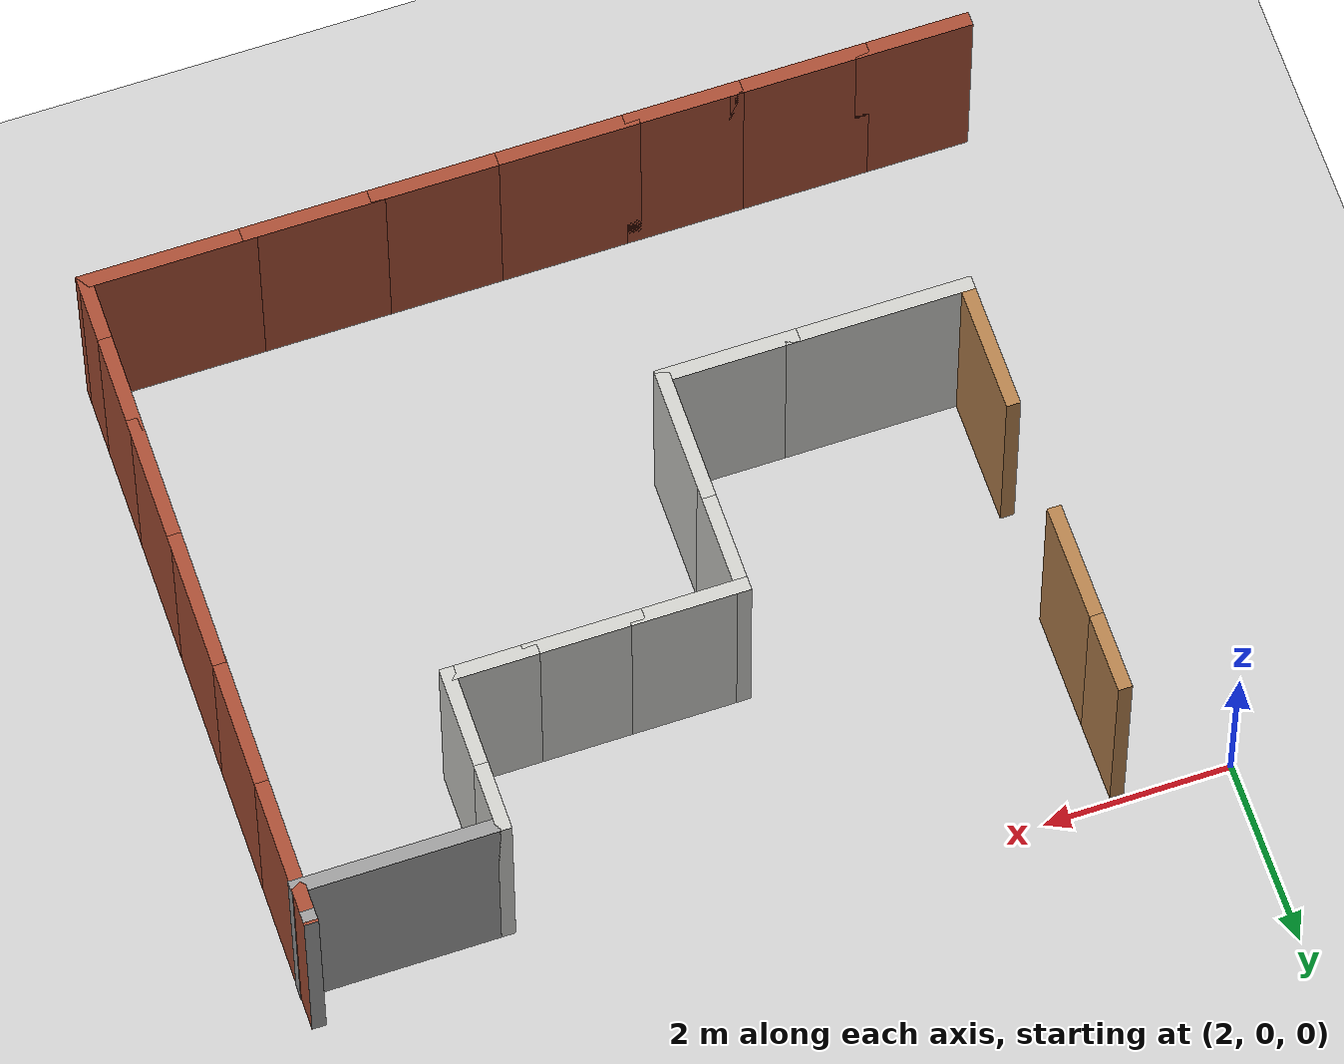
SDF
<sdf version="1.7">
 <world name="default">
  <model name="ground_plane">
   <static>1</static>
   <link name="link">
    <collision name="collision">
     <geometry><plane><normal>0 0 1</normal><size>100 100</size></plane></geometry>
     <surface>
      <contact><collide_bitmask>65535</collide_bitmask></contact>
      <friction><ode><mu>100</mu><mu2>50</mu2></ode></friction>
     </surface>
    </collision>
    <visual name="visual">
     <cast_shadows>0</cast_shadows>
     <geometry><plane><normal>0 0 1</normal><size>100 100</size></plane></geometry>
     <material>
      <script><uri>file://media/materials/scripts/gazebo.material</uri><name>Gazebo/Grey</name></script>
     </material>
    </visual>
   </link>
  </model>
  <model name="Building">
   <link name="Wall_126">
    <pose>2.88596 -1.03693 0 0 0 -1.5708</pose>
    <visual name="Wall_126_Visual">
     <pose>0 0 1.25 0 -0 0</pose>
     <geometry><box><size>1 0.15 2.5</size></box></geometry>
     <material>
      <script><uri>file://media/materials/scripts/gazebo.material</uri><name>Gazebo/Wood</name></script>
      <ambient>1 1 1 1</ambient>
      <shader type="pixel"/>
     </material>
     <meta><layer>0</layer></meta>
    </visual>
    <collision name="Wall_126_Collision">
     <pose>0 0 1.25 0 -0 0</pose>
     <geometry><box><size>1 0.15 2.5</size></box></geometry>
     <surface>
      <friction>
       <ode><mu>1</mu><mu2>1</mu2><fdir1>0 0 0</fdir1><slip1>0</slip1><slip2>0</slip2></ode>
       <torsional>
        <coefficient>1</coefficient>
        <patch_radius>0</patch_radius>
        <surface_radius>0</surface_radius>
        <use_patch_radius>1</use_patch_radius>
        <ode><slip>0</slip></ode>
       </torsional>
      </friction>
      <bounce><restitution_coefficient>0</restitution_coefficient><threshold>1e+06</threshold></bounce>
      <contact>
       <collide_without_contact>0</collide_without_contact>
       <collide_without_contact_bitmask>1</collide_without_contact_bitmask>
       <collide_bitmask>1</collide_bitmask>
       <ode>
        <soft_cfm>0</soft_cfm>
        <soft_erp>0.2</soft_erp>
        <kp>1e+13</kp>
        <kd>1</kd>
        <max_vel>0.01</max_vel>
        <min_depth>0</min_depth>
       </ode>
       <bullet>
        <split_impulse>1</split_impulse>
        <split_impulse_penetration_threshold>-0.01</split_impulse_penetration_threshold>
        <soft_cfm>0</soft_cfm>
        <soft_erp>0.2</soft_erp>
        <kp>1e+13</kp>
        <kd>1</kd>
       </bullet>
      </contact>
     </surface>
    </collision>
   </link>
   <link name="Wall_127">
    <pose>2.88596 -2.01193 0 0 0 -1.5708</pose>
    <visual name="Wall_127_Visual">
     <pose>0 0 1.25 0 -0 0</pose>
     <geometry><box><size>1.25 0.15 2.5</size></box></geometry>
     <material>
      <script><uri>file://media/materials/scripts/gazebo.material</uri><name>Gazebo/Wood</name></script>
      <ambient>1 1 1 1</ambient>
      <shader type="pixel"/>
     </material>
     <meta><layer>0</layer></meta>
    </visual>
    <collision name="Wall_127_Collision">
     <pose>0 0 1.25 0 -0 0</pose>
     <geometry><box><size>1.25 0.15 2.5</size></box></geometry>
     <surface>
      <friction>
       <ode><mu>1</mu><mu2>1</mu2><fdir1>0 0 0</fdir1><slip1>0</slip1><slip2>0</slip2></ode>
       <torsional>
        <coefficient>1</coefficient>
        <patch_radius>0</patch_radius>
        <surface_radius>0</surface_radius>
        <use_patch_radius>1</use_patch_radius>
        <ode><slip>0</slip></ode>
       </torsional>
      </friction>
      <bounce><restitution_coefficient>0</restitution_coefficient><threshold>1e+06</threshold></bounce>
      <contact>
       <collide_without_contact>0</collide_without_contact>
       <collide_without_contact_bitmask>1</collide_without_contact_bitmask>
       <collide_bitmask>1</collide_bitmask>
       <ode>
        <soft_cfm>0</soft_cfm>
        <soft_erp>0.2</soft_erp>
        <kp>1e+13</kp>
        <kd>1</kd>
        <max_vel>0.01</max_vel>
        <min_depth>0</min_depth>
       </ode>
       <bullet>
        <split_impulse>1</split_impulse>
        <split_impulse_penetration_threshold>-0.01</split_impulse_penetration_threshold>
        <soft_cfm>0</soft_cfm>
        <soft_erp>0.2</soft_erp>
        <kp>1e+13</kp>
        <kd>1</kd>
       </bullet>
      </contact>
     </surface>
    </collision>
   </link>
   <link name="Wall_129">
    <pose>2.88596 -4.58694 0 0 0 -1.5708</pose>
    <visual name="Wall_129_Visual">
     <pose>0 0 1.25 0 -0 0</pose>
     <geometry><box><size>1.5 0.15 2.5</size></box></geometry>
     <material>
      <script><uri>file://media/materials/scripts/gazebo.material</uri><name>Gazebo/Wood</name></script>
      <ambient>1 1 1 1</ambient>
      <shader type="pixel"/>
     </material>
     <meta><layer>0</layer></meta>
    </visual>
    <collision name="Wall_129_Collision">
     <pose>0 0 1.25 0 -0 0</pose>
     <geometry><box><size>1.5 0.15 2.5</size></box></geometry>
     <surface>
      <friction>
       <ode><mu>1</mu><mu2>1</mu2><fdir1>0 0 0</fdir1><slip1>0</slip1><slip2>0</slip2></ode>
       <torsional>
        <coefficient>1</coefficient>
        <patch_radius>0</patch_radius>
        <surface_radius>0</surface_radius>
        <use_patch_radius>1</use_patch_radius>
        <ode><slip>0</slip></ode>
       </torsional>
      </friction>
      <bounce><restitution_coefficient>0</restitution_coefficient><threshold>1e+06</threshold></bounce>
      <contact>
       <collide_without_contact>0</collide_without_contact>
       <collide_without_contact_bitmask>1</collide_without_contact_bitmask>
       <collide_bitmask>1</collide_bitmask>
       <ode>
        <soft_cfm>0</soft_cfm>
        <soft_erp>0.2</soft_erp>
        <kp>1e+13</kp>
        <kd>1</kd>
        <max_vel>0.01</max_vel>
        <min_depth>0</min_depth>
       </ode>
       <bullet>
        <split_impulse>1</split_impulse>
        <split_impulse_penetration_threshold>-0.01</split_impulse_penetration_threshold>
        <soft_cfm>0</soft_cfm>
        <soft_erp>0.2</soft_erp>
        <kp>1e+13</kp>
        <kd>1</kd>
       </bullet>
      </contact>
     </surface>
    </collision>
   </link>
   <link name="Wall_130">
    <pose>3.81096 -5.26194 0 0 -0 0</pose>
    <visual name="Wall_130_Visual">
     <pose>0 0 1.25 0 -0 0</pose>
     <geometry><box><size>2 0.15 2.5</size></box></geometry>
     <material>
      <script><uri>file://media/materials/scripts/gazebo.material</uri><name>Gazebo/CeilingTiled</name></script>
      <ambient>1 1 1 1</ambient>
      <shader type="pixel"/>
     </material>
     <meta><layer>0</layer></meta>
    </visual>
    <collision name="Wall_130_Collision">
     <pose>0 0 1.25 0 -0 0</pose>
     <geometry><box><size>2 0.15 2.5</size></box></geometry>
     <surface>
      <friction>
       <ode><mu>1</mu><mu2>1</mu2><fdir1>0 0 0</fdir1><slip1>0</slip1><slip2>0</slip2></ode>
       <torsional>
        <coefficient>1</coefficient>
        <patch_radius>0</patch_radius>
        <surface_radius>0</surface_radius>
        <use_patch_radius>1</use_patch_radius>
        <ode><slip>0</slip></ode>
       </torsional>
      </friction>
      <bounce><restitution_coefficient>0</restitution_coefficient><threshold>1e+06</threshold></bounce>
      <contact>
       <collide_without_contact>0</collide_without_contact>
       <collide_without_contact_bitmask>1</collide_without_contact_bitmask>
       <collide_bitmask>1</collide_bitmask>
       <ode>
        <soft_cfm>0</soft_cfm>
        <soft_erp>0.2</soft_erp>
        <kp>1e+13</kp>
        <kd>1</kd>
        <max_vel>0.01</max_vel>
        <min_depth>0</min_depth>
       </ode>
       <bullet>
        <split_impulse>1</split_impulse>
        <split_impulse_penetration_threshold>-0.01</split_impulse_penetration_threshold>
        <soft_cfm>0</soft_cfm>
        <soft_erp>0.2</soft_erp>
        <kp>1e+13</kp>
        <kd>1</kd>
       </bullet>
      </contact>
     </surface>
    </collision>
   </link>
   <link name="Wall_131">
    <pose>5.41096 -5.26194 0 0 -0 0</pose>
    <visual name="Wall_131_Visual">
     <pose>0 0 1.25 0 -0 0</pose>
     <geometry><box><size>1.5 0.15 2.5</size></box></geometry>
     <material>
      <script><uri>file://media/materials/scripts/gazebo.material</uri><name>Gazebo/CeilingTiled</name></script>
      <ambient>1 1 1 1</ambient>
      <shader type="pixel"/>
     </material>
     <meta><layer>0</layer></meta>
    </visual>
    <collision name="Wall_131_Collision">
     <pose>0 0 1.25 0 -0 0</pose>
     <geometry><box><size>1.5 0.15 2.5</size></box></geometry>
     <surface>
      <friction>
       <ode><mu>1</mu><mu2>1</mu2><fdir1>0 0 0</fdir1><slip1>0</slip1><slip2>0</slip2></ode>
       <torsional>
        <coefficient>1</coefficient>
        <patch_radius>0</patch_radius>
        <surface_radius>0</surface_radius>
        <use_patch_radius>1</use_patch_radius>
        <ode><slip>0</slip></ode>
       </torsional>
      </friction>
      <bounce><restitution_coefficient>0</restitution_coefficient><threshold>1e+06</threshold></bounce>
      <contact>
       <collide_without_contact>0</collide_without_contact>
       <collide_without_contact_bitmask>1</collide_without_contact_bitmask>
       <collide_bitmask>1</collide_bitmask>
       <ode>
        <soft_cfm>0</soft_cfm>
        <soft_erp>0.2</soft_erp>
        <kp>1e+13</kp>
        <kd>1</kd>
        <max_vel>0.01</max_vel>
        <min_depth>0</min_depth>
       </ode>
       <bullet>
        <split_impulse>1</split_impulse>
        <split_impulse_penetration_threshold>-0.01</split_impulse_penetration_threshold>
        <soft_cfm>0</soft_cfm>
        <soft_erp>0.2</soft_erp>
        <kp>1e+13</kp>
        <kd>1</kd>
       </bullet>
      </contact>
     </surface>
    </collision>
   </link>
   <link name="Wall_132">
    <pose>6.08596 -4.58694 0 0 -0 1.5708</pose>
    <visual name="Wall_132_Visual">
     <pose>0 0 1.25 0 -0 0</pose>
     <geometry><box><size>1.5 0.15 2.5</size></box></geometry>
     <material>
      <script><uri>file://media/materials/scripts/gazebo.material</uri><name>Gazebo/CeilingTiled</name></script>
      <ambient>1 1 1 1</ambient>
      <shader type="pixel"/>
     </material>
     <meta><layer>0</layer></meta>
    </visual>
    <collision name="Wall_132_Collision">
     <pose>0 0 1.25 0 -0 0</pose>
     <geometry><box><size>1.5 0.15 2.5</size></box></geometry>
     <surface>
      <friction>
       <ode><mu>1</mu><mu2>1</mu2><fdir1>0 0 0</fdir1><slip1>0</slip1><slip2>0</slip2></ode>
       <torsional>
        <coefficient>1</coefficient>
        <patch_radius>0</patch_radius>
        <surface_radius>0</surface_radius>
        <use_patch_radius>1</use_patch_radius>
        <ode><slip>0</slip></ode>
       </torsional>
      </friction>
      <bounce><restitution_coefficient>0</restitution_coefficient><threshold>1e+06</threshold></bounce>
      <contact>
       <collide_without_contact>0</collide_without_contact>
       <collide_without_contact_bitmask>1</collide_without_contact_bitmask>
       <collide_bitmask>1</collide_bitmask>
       <ode>
        <soft_cfm>0</soft_cfm>
        <soft_erp>0.2</soft_erp>
        <kp>1e+13</kp>
        <kd>1</kd>
        <max_vel>0.01</max_vel>
        <min_depth>0</min_depth>
       </ode>
       <bullet>
        <split_impulse>1</split_impulse>
        <split_impulse_penetration_threshold>-0.01</split_impulse_penetration_threshold>
        <soft_cfm>0</soft_cfm>
        <soft_erp>0.2</soft_erp>
        <kp>1e+13</kp>
        <kd>1</kd>
       </bullet>
      </contact>
     </surface>
    </collision>
   </link>
   <link name="Wall_133">
    <pose>6.08596 -3.36193 0 0 -0 1.5708</pose>
    <visual name="Wall_133_Visual">
     <pose>0 0 1.25 0 -0 0</pose>
     <geometry><box><size>1.25 0.15 2.5</size></box></geometry>
     <material>
      <script><uri>file://media/materials/scripts/gazebo.material</uri><name>Gazebo/CeilingTiled</name></script>
      <ambient>1 1 1 1</ambient>
      <shader type="pixel"/>
     </material>
     <meta><layer>0</layer></meta>
    </visual>
    <collision name="Wall_133_Collision">
     <pose>0 0 1.25 0 -0 0</pose>
     <geometry><box><size>1.25 0.15 2.5</size></box></geometry>
     <surface>
      <friction>
       <ode><mu>1</mu><mu2>1</mu2><fdir1>0 0 0</fdir1><slip1>0</slip1><slip2>0</slip2></ode>
       <torsional>
        <coefficient>1</coefficient>
        <patch_radius>0</patch_radius>
        <surface_radius>0</surface_radius>
        <use_patch_radius>1</use_patch_radius>
        <ode><slip>0</slip></ode>
       </torsional>
      </friction>
      <bounce><restitution_coefficient>0</restitution_coefficient><threshold>1e+06</threshold></bounce>
      <contact>
       <collide_without_contact>0</collide_without_contact>
       <collide_without_contact_bitmask>1</collide_without_contact_bitmask>
       <collide_bitmask>1</collide_bitmask>
       <ode>
        <soft_cfm>0</soft_cfm>
        <soft_erp>0.2</soft_erp>
        <kp>1e+13</kp>
        <kd>1</kd>
        <max_vel>0.01</max_vel>
        <min_depth>0</min_depth>
       </ode>
       <bullet>
        <split_impulse>1</split_impulse>
        <split_impulse_penetration_threshold>-0.01</split_impulse_penetration_threshold>
        <soft_cfm>0</soft_cfm>
        <soft_erp>0.2</soft_erp>
        <kp>1e+13</kp>
        <kd>1</kd>
       </bullet>
      </contact>
     </surface>
    </collision>
   </link>
   <link name="Wall_134">
    <pose>6.63596 -2.81194 0 0 -0 0</pose>
    <visual name="Wall_134_Visual">
     <pose>0 0 1.25 0 -0 0</pose>
     <geometry><box><size>1.25 0.15 2.5</size></box></geometry>
     <material>
      <script><uri>file://media/materials/scripts/gazebo.material</uri><name>Gazebo/CeilingTiled</name></script>
      <ambient>1 1 1 1</ambient>
      <shader type="pixel"/>
     </material>
     <meta><layer>0</layer></meta>
    </visual>
    <collision name="Wall_134_Collision">
     <pose>0 0 1.25 0 -0 0</pose>
     <geometry><box><size>1.25 0.15 2.5</size></box></geometry>
     <surface>
      <friction>
       <ode><mu>1</mu><mu2>1</mu2><fdir1>0 0 0</fdir1><slip1>0</slip1><slip2>0</slip2></ode>
       <torsional>
        <coefficient>1</coefficient>
        <patch_radius>0</patch_radius>
        <surface_radius>0</surface_radius>
        <use_patch_radius>1</use_patch_radius>
        <ode><slip>0</slip></ode>
       </torsional>
      </friction>
      <bounce><restitution_coefficient>0</restitution_coefficient><threshold>1e+06</threshold></bounce>
      <contact>
       <collide_without_contact>0</collide_without_contact>
       <collide_without_contact_bitmask>1</collide_without_contact_bitmask>
       <collide_bitmask>1</collide_bitmask>
       <ode>
        <soft_cfm>0</soft_cfm>
        <soft_erp>0.2</soft_erp>
        <kp>1e+13</kp>
        <kd>1</kd>
        <max_vel>0.01</max_vel>
        <min_depth>0</min_depth>
       </ode>
       <bullet>
        <split_impulse>1</split_impulse>
        <split_impulse_penetration_threshold>-0.01</split_impulse_penetration_threshold>
        <soft_cfm>0</soft_cfm>
        <soft_erp>0.2</soft_erp>
        <kp>1e+13</kp>
        <kd>1</kd>
       </bullet>
      </contact>
     </surface>
    </collision>
   </link>
   <link name="Wall_135">
    <pose>7.73596 -2.81194 0 0 -0 0</pose>
    <visual name="Wall_135_Visual">
     <pose>0 0 1.25 0 -0 0</pose>
     <geometry><box><size>1.25 0.15 2.5</size></box></geometry>
     <material>
      <script><uri>file://media/materials/scripts/gazebo.material</uri><name>Gazebo/CeilingTiled</name></script>
      <ambient>1 1 1 1</ambient>
      <shader type="pixel"/>
     </material>
     <meta><layer>0</layer></meta>
    </visual>
    <collision name="Wall_135_Collision">
     <pose>0 0 1.25 0 -0 0</pose>
     <geometry><box><size>1.25 0.15 2.5</size></box></geometry>
     <surface>
      <friction>
       <ode><mu>1</mu><mu2>1</mu2><fdir1>0 0 0</fdir1><slip1>0</slip1><slip2>0</slip2></ode>
       <torsional>
        <coefficient>1</coefficient>
        <patch_radius>0</patch_radius>
        <surface_radius>0</surface_radius>
        <use_patch_radius>1</use_patch_radius>
        <ode><slip>0</slip></ode>
       </torsional>
      </friction>
      <bounce><restitution_coefficient>0</restitution_coefficient><threshold>1e+06</threshold></bounce>
      <contact>
       <collide_without_contact>0</collide_without_contact>
       <collide_without_contact_bitmask>1</collide_without_contact_bitmask>
       <collide_bitmask>1</collide_bitmask>
       <ode>
        <soft_cfm>0</soft_cfm>
        <soft_erp>0.2</soft_erp>
        <kp>1e+13</kp>
        <kd>1</kd>
        <max_vel>0.01</max_vel>
        <min_depth>0</min_depth>
       </ode>
       <bullet>
        <split_impulse>1</split_impulse>
        <split_impulse_penetration_threshold>-0.01</split_impulse_penetration_threshold>
        <soft_cfm>0</soft_cfm>
        <soft_erp>0.2</soft_erp>
        <kp>1e+13</kp>
        <kd>1</kd>
       </bullet>
      </contact>
     </surface>
    </collision>
   </link>
   <link name="Wall_136">
    <pose>8.71096 -2.81194 0 0 -0 0</pose>
    <visual name="Wall_136_Visual">
     <pose>0 0 1.25 0 -0 0</pose>
     <geometry><box><size>1 0.15 2.5</size></box></geometry>
     <material>
      <script><uri>file://media/materials/scripts/gazebo.material</uri><name>Gazebo/CeilingTiled</name></script>
      <ambient>1 1 1 1</ambient>
      <shader type="pixel"/>
     </material>
     <meta><layer>0</layer></meta>
    </visual>
    <collision name="Wall_136_Collision">
     <pose>0 0 1.25 0 -0 0</pose>
     <geometry><box><size>1 0.15 2.5</size></box></geometry>
     <surface>
      <friction>
       <ode><mu>1</mu><mu2>1</mu2><fdir1>0 0 0</fdir1><slip1>0</slip1><slip2>0</slip2></ode>
       <torsional>
        <coefficient>1</coefficient>
        <patch_radius>0</patch_radius>
        <surface_radius>0</surface_radius>
        <use_patch_radius>1</use_patch_radius>
        <ode><slip>0</slip></ode>
       </torsional>
      </friction>
      <bounce><restitution_coefficient>0</restitution_coefficient><threshold>1e+06</threshold></bounce>
      <contact>
       <collide_without_contact>0</collide_without_contact>
       <collide_without_contact_bitmask>1</collide_without_contact_bitmask>
       <collide_bitmask>1</collide_bitmask>
       <ode>
        <soft_cfm>0</soft_cfm>
        <soft_erp>0.2</soft_erp>
        <kp>1e+13</kp>
        <kd>1</kd>
        <max_vel>0.01</max_vel>
        <min_depth>0</min_depth>
       </ode>
       <bullet>
        <split_impulse>1</split_impulse>
        <split_impulse_penetration_threshold>-0.01</split_impulse_penetration_threshold>
        <soft_cfm>0</soft_cfm>
        <soft_erp>0.2</soft_erp>
        <kp>1e+13</kp>
        <kd>1</kd>
       </bullet>
      </contact>
     </surface>
    </collision>
   </link>
   <link name="Wall_137">
    <pose>9.13596 -2.26193 0 0 -0 1.5708</pose>
    <visual name="Wall_137_Visual">
     <pose>0 0 1.25 0 -0 0</pose>
     <geometry><box><size>1.25 0.15 2.5</size></box></geometry>
     <material>
      <script><uri>file://media/materials/scripts/gazebo.material</uri><name>Gazebo/CeilingTiled</name></script>
      <ambient>1 1 1 1</ambient>
      <shader type="pixel"/>
     </material>
     <meta><layer>0</layer></meta>
    </visual>
    <collision name="Wall_137_Collision">
     <pose>0 0 1.25 0 -0 0</pose>
     <geometry><box><size>1.25 0.15 2.5</size></box></geometry>
     <surface>
      <friction>
       <ode><mu>1</mu><mu2>1</mu2><fdir1>0 0 0</fdir1><slip1>0</slip1><slip2>0</slip2></ode>
       <torsional>
        <coefficient>1</coefficient>
        <patch_radius>0</patch_radius>
        <surface_radius>0</surface_radius>
        <use_patch_radius>1</use_patch_radius>
        <ode><slip>0</slip></ode>
       </torsional>
      </friction>
      <bounce><restitution_coefficient>0</restitution_coefficient><threshold>1e+06</threshold></bounce>
      <contact>
       <collide_without_contact>0</collide_without_contact>
       <collide_without_contact_bitmask>1</collide_without_contact_bitmask>
       <collide_bitmask>1</collide_bitmask>
       <ode>
        <soft_cfm>0</soft_cfm>
        <soft_erp>0.2</soft_erp>
        <kp>1e+13</kp>
        <kd>1</kd>
        <max_vel>0.01</max_vel>
        <min_depth>0</min_depth>
       </ode>
       <bullet>
        <split_impulse>1</split_impulse>
        <split_impulse_penetration_threshold>-0.01</split_impulse_penetration_threshold>
        <soft_cfm>0</soft_cfm>
        <soft_erp>0.2</soft_erp>
        <kp>1e+13</kp>
        <kd>1</kd>
       </bullet>
      </contact>
     </surface>
    </collision>
   </link>
   <link name="Wall_138">
    <pose>9.13596 -1.41193 0 0 -0 1.5708</pose>
    <visual name="Wall_138_Visual">
     <pose>0 0 1.25 0 -0 0</pose>
     <geometry><box><size>0.75 0.15 2.5</size></box></geometry>
     <material>
      <script><uri>file://media/materials/scripts/gazebo.material</uri><name>Gazebo/CeilingTiled</name></script>
      <ambient>1 1 1 1</ambient>
      <shader type="pixel"/>
     </material>
     <meta><layer>0</layer></meta>
    </visual>
    <collision name="Wall_138_Collision">
     <pose>0 0 1.25 0 -0 0</pose>
     <geometry><box><size>0.75 0.15 2.5</size></box></geometry>
     <surface>
      <friction>
       <ode><mu>1</mu><mu2>1</mu2><fdir1>0 0 0</fdir1><slip1>0</slip1><slip2>0</slip2></ode>
       <torsional>
        <coefficient>1</coefficient>
        <patch_radius>0</patch_radius>
        <surface_radius>0</surface_radius>
        <use_patch_radius>1</use_patch_radius>
        <ode><slip>0</slip></ode>
       </torsional>
      </friction>
      <bounce><restitution_coefficient>0</restitution_coefficient><threshold>1e+06</threshold></bounce>
      <contact>
       <collide_without_contact>0</collide_without_contact>
       <collide_without_contact_bitmask>1</collide_without_contact_bitmask>
       <collide_bitmask>1</collide_bitmask>
       <ode>
        <soft_cfm>0</soft_cfm>
        <soft_erp>0.2</soft_erp>
        <kp>1e+13</kp>
        <kd>1</kd>
        <max_vel>0.01</max_vel>
        <min_depth>0</min_depth>
       </ode>
       <bullet>
        <split_impulse>1</split_impulse>
        <split_impulse_penetration_threshold>-0.01</split_impulse_penetration_threshold>
        <soft_cfm>0</soft_cfm>
        <soft_erp>0.2</soft_erp>
        <kp>1e+13</kp>
        <kd>1</kd>
       </bullet>
      </contact>
     </surface>
    </collision>
   </link>
   <link name="Wall_144">
    <pose>10.186 -1.11193 0 0 -0 0</pose>
    <visual name="Wall_144_Visual">
     <pose>0 0 1.25 0 -0 0</pose>
     <geometry><box><size>2.25 0.15 2.5</size></box></geometry>
     <material>
      <script><uri>file://media/materials/scripts/gazebo.material</uri><name>Gazebo/Grey</name></script>
      <ambient>1 1 1 1</ambient>
      <shader type="pixel"/>
     </material>
     <meta><layer>0</layer></meta>
    </visual>
    <collision name="Wall_144_Collision">
     <pose>0 0 1.25 0 -0 0</pose>
     <geometry><box><size>2.25 0.15 2.5</size></box></geometry>
     <surface>
      <friction>
       <ode><mu>1</mu><mu2>1</mu2><fdir1>0 0 0</fdir1><slip1>0</slip1><slip2>0</slip2></ode>
       <torsional>
        <coefficient>1</coefficient>
        <patch_radius>0</patch_radius>
        <surface_radius>0</surface_radius>
        <use_patch_radius>1</use_patch_radius>
        <ode><slip>0</slip></ode>
       </torsional>
      </friction>
      <bounce><restitution_coefficient>0</restitution_coefficient><threshold>1e+06</threshold></bounce>
      <contact>
       <collide_without_contact>0</collide_without_contact>
       <collide_without_contact_bitmask>1</collide_without_contact_bitmask>
       <collide_bitmask>1</collide_bitmask>
       <ode>
        <soft_cfm>0</soft_cfm>
        <soft_erp>0.2</soft_erp>
        <kp>1e+13</kp>
        <kd>1</kd>
        <max_vel>0.01</max_vel>
        <min_depth>0</min_depth>
       </ode>
       <bullet>
        <split_impulse>1</split_impulse>
        <split_impulse_penetration_threshold>-0.01</split_impulse_penetration_threshold>
        <soft_cfm>0</soft_cfm>
        <soft_erp>0.2</soft_erp>
        <kp>1e+13</kp>
        <kd>1</kd>
       </bullet>
      </contact>
     </surface>
    </collision>
   </link>
   <link name="Wall_33">
    <pose>2.46404 -8.11373 0 0 -0 0</pose>
    <visual name="Wall_33_Visual">
     <pose>0 0 1.25 0 -0 0</pose>
     <geometry><box><size>1.25 0.15 2.5</size></box></geometry>
     <material>
      <script><uri>file://media/materials/scripts/gazebo.material</uri><name>Gazebo/Bricks</name></script>
      <ambient>1 1 1 1</ambient>
      <shader type="pixel"/>
     </material>
     <meta><layer>0</layer></meta>
    </visual>
    <collision name="Wall_33_Collision">
     <pose>0 0 1.25 0 -0 0</pose>
     <geometry><box><size>1.25 0.15 2.5</size></box></geometry>
     <surface>
      <friction>
       <ode><mu>1</mu><mu2>1</mu2><fdir1>0 0 0</fdir1><slip1>0</slip1><slip2>0</slip2></ode>
       <torsional>
        <coefficient>1</coefficient>
        <patch_radius>0</patch_radius>
        <surface_radius>0</surface_radius>
        <use_patch_radius>1</use_patch_radius>
        <ode><slip>0</slip></ode>
       </torsional>
      </friction>
      <bounce><restitution_coefficient>0</restitution_coefficient><threshold>1e+06</threshold></bounce>
      <contact>
       <collide_without_contact>0</collide_without_contact>
       <collide_without_contact_bitmask>1</collide_without_contact_bitmask>
       <collide_bitmask>1</collide_bitmask>
       <ode>
        <soft_cfm>0</soft_cfm>
        <soft_erp>0.2</soft_erp>
        <kp>1e+13</kp>
        <kd>1</kd>
        <max_vel>0.01</max_vel>
        <min_depth>0</min_depth>
       </ode>
       <bullet>
        <split_impulse>1</split_impulse>
        <split_impulse_penetration_threshold>-0.01</split_impulse_penetration_threshold>
        <soft_cfm>0</soft_cfm>
        <soft_erp>0.2</soft_erp>
        <kp>1e+13</kp>
        <kd>1</kd>
       </bullet>
      </contact>
     </surface>
    </collision>
   </link>
   <link name="Wall_34">
    <pose>3.68904 -8.11373 0 0 -0 0</pose>
    <visual name="Wall_34_Visual">
     <pose>0 0 1.25 0 -0 0</pose>
     <geometry><box><size>1.5 0.15 2.5</size></box></geometry>
     <material>
      <script><uri>file://media/materials/scripts/gazebo.material</uri><name>Gazebo/Bricks</name></script>
      <ambient>1 1 1 1</ambient>
      <shader type="pixel"/>
     </material>
     <meta><layer>0</layer></meta>
    </visual>
    <collision name="Wall_34_Collision">
     <pose>0 0 1.25 0 -0 0</pose>
     <geometry><box><size>1.5 0.15 2.5</size></box></geometry>
     <surface>
      <friction>
       <ode><mu>1</mu><mu2>1</mu2><fdir1>0 0 0</fdir1><slip1>0</slip1><slip2>0</slip2></ode>
       <torsional>
        <coefficient>1</coefficient>
        <patch_radius>0</patch_radius>
        <surface_radius>0</surface_radius>
        <use_patch_radius>1</use_patch_radius>
        <ode><slip>0</slip></ode>
       </torsional>
      </friction>
      <bounce><restitution_coefficient>0</restitution_coefficient><threshold>1e+06</threshold></bounce>
      <contact>
       <collide_without_contact>0</collide_without_contact>
       <collide_without_contact_bitmask>1</collide_without_contact_bitmask>
       <collide_bitmask>1</collide_bitmask>
       <ode>
        <soft_cfm>0</soft_cfm>
        <soft_erp>0.2</soft_erp>
        <kp>1e+13</kp>
        <kd>1</kd>
        <max_vel>0.01</max_vel>
        <min_depth>0</min_depth>
       </ode>
       <bullet>
        <split_impulse>1</split_impulse>
        <split_impulse_penetration_threshold>-0.01</split_impulse_penetration_threshold>
        <soft_cfm>0</soft_cfm>
        <soft_erp>0.2</soft_erp>
        <kp>1e+13</kp>
        <kd>1</kd>
       </bullet>
      </contact>
     </surface>
    </collision>
   </link>
   <link name="Wall_35">
    <pose>4.91404 -8.11373 0 0 -0 0</pose>
    <visual name="Wall_35_Visual">
     <pose>0 0 1.25 0 -0 0</pose>
     <geometry><box><size>1.25 0.15 2.5</size></box></geometry>
     <material>
      <script><uri>file://media/materials/scripts/gazebo.material</uri><name>Gazebo/Bricks</name></script>
      <ambient>1 1 1 1</ambient>
      <shader type="pixel"/>
     </material>
     <meta><layer>0</layer></meta>
    </visual>
    <collision name="Wall_35_Collision">
     <pose>0 0 1.25 0 -0 0</pose>
     <geometry><box><size>1.25 0.15 2.5</size></box></geometry>
     <surface>
      <friction>
       <ode><mu>1</mu><mu2>1</mu2><fdir1>0 0 0</fdir1><slip1>0</slip1><slip2>0</slip2></ode>
       <torsional>
        <coefficient>1</coefficient>
        <patch_radius>0</patch_radius>
        <surface_radius>0</surface_radius>
        <use_patch_radius>1</use_patch_radius>
        <ode><slip>0</slip></ode>
       </torsional>
      </friction>
      <bounce><restitution_coefficient>0</restitution_coefficient><threshold>1e+06</threshold></bounce>
      <contact>
       <collide_without_contact>0</collide_without_contact>
       <collide_without_contact_bitmask>1</collide_without_contact_bitmask>
       <collide_bitmask>1</collide_bitmask>
       <ode>
        <soft_cfm>0</soft_cfm>
        <soft_erp>0.2</soft_erp>
        <kp>1e+13</kp>
        <kd>1</kd>
        <max_vel>0.01</max_vel>
        <min_depth>0</min_depth>
       </ode>
       <bullet>
        <split_impulse>1</split_impulse>
        <split_impulse_penetration_threshold>-0.01</split_impulse_penetration_threshold>
        <soft_cfm>0</soft_cfm>
        <soft_erp>0.2</soft_erp>
        <kp>1e+13</kp>
        <kd>1</kd>
       </bullet>
      </contact>
     </surface>
    </collision>
   </link>
   <link name="Wall_36">
    <pose>6.13904 -8.11373 0 0 -0 0</pose>
    <visual name="Wall_36_Visual">
     <pose>0 0 1.25 0 -0 0</pose>
     <geometry><box><size>1.5 0.15 2.5</size></box></geometry>
     <material>
      <script><uri>file://media/materials/scripts/gazebo.material</uri><name>Gazebo/Bricks</name></script>
      <ambient>1 1 1 1</ambient>
      <shader type="pixel"/>
     </material>
     <meta><layer>0</layer></meta>
    </visual>
    <collision name="Wall_36_Collision">
     <pose>0 0 1.25 0 -0 0</pose>
     <geometry><box><size>1.5 0.15 2.5</size></box></geometry>
     <surface>
      <friction>
       <ode><mu>1</mu><mu2>1</mu2><fdir1>0 0 0</fdir1><slip1>0</slip1><slip2>0</slip2></ode>
       <torsional>
        <coefficient>1</coefficient>
        <patch_radius>0</patch_radius>
        <surface_radius>0</surface_radius>
        <use_patch_radius>1</use_patch_radius>
        <ode><slip>0</slip></ode>
       </torsional>
      </friction>
      <bounce><restitution_coefficient>0</restitution_coefficient><threshold>1e+06</threshold></bounce>
      <contact>
       <collide_without_contact>0</collide_without_contact>
       <collide_without_contact_bitmask>1</collide_without_contact_bitmask>
       <collide_bitmask>1</collide_bitmask>
       <ode>
        <soft_cfm>0</soft_cfm>
        <soft_erp>0.2</soft_erp>
        <kp>1e+13</kp>
        <kd>1</kd>
        <max_vel>0.01</max_vel>
        <min_depth>0</min_depth>
       </ode>
       <bullet>
        <split_impulse>1</split_impulse>
        <split_impulse_penetration_threshold>-0.01</split_impulse_penetration_threshold>
        <soft_cfm>0</soft_cfm>
        <soft_erp>0.2</soft_erp>
        <kp>1e+13</kp>
        <kd>1</kd>
       </bullet>
      </contact>
     </surface>
    </collision>
   </link>
   <link name="Wall_37">
    <pose>7.48904 -8.11373 0 0 -0 0</pose>
    <visual name="Wall_37_Visual">
     <pose>0 0 1.25 0 -0 0</pose>
     <geometry><box><size>1.5 0.15 2.5</size></box></geometry>
     <material>
      <script><uri>file://media/materials/scripts/gazebo.material</uri><name>Gazebo/Bricks</name></script>
      <ambient>1 1 1 1</ambient>
      <shader type="pixel"/>
     </material>
     <meta><layer>0</layer></meta>
    </visual>
    <collision name="Wall_37_Collision">
     <pose>0 0 1.25 0 -0 0</pose>
     <geometry><box><size>1.5 0.15 2.5</size></box></geometry>
     <surface>
      <friction>
       <ode><mu>1</mu><mu2>1</mu2><fdir1>0 0 0</fdir1><slip1>0</slip1><slip2>0</slip2></ode>
       <torsional>
        <coefficient>1</coefficient>
        <patch_radius>0</patch_radius>
        <surface_radius>0</surface_radius>
        <use_patch_radius>1</use_patch_radius>
        <ode><slip>0</slip></ode>
       </torsional>
      </friction>
      <bounce><restitution_coefficient>0</restitution_coefficient><threshold>1e+06</threshold></bounce>
      <contact>
       <collide_without_contact>0</collide_without_contact>
       <collide_without_contact_bitmask>1</collide_without_contact_bitmask>
       <collide_bitmask>1</collide_bitmask>
       <ode>
        <soft_cfm>0</soft_cfm>
        <soft_erp>0.2</soft_erp>
        <kp>1e+13</kp>
        <kd>1</kd>
        <max_vel>0.01</max_vel>
        <min_depth>0</min_depth>
       </ode>
       <bullet>
        <split_impulse>1</split_impulse>
        <split_impulse_penetration_threshold>-0.01</split_impulse_penetration_threshold>
        <soft_cfm>0</soft_cfm>
        <soft_erp>0.2</soft_erp>
        <kp>1e+13</kp>
        <kd>1</kd>
       </bullet>
      </contact>
     </surface>
    </collision>
   </link>
   <link name="Wall_38">
    <pose>8.83904 -8.11373 0 0 -0 0</pose>
    <visual name="Wall_38_Visual">
     <pose>0 0 1.25 0 -0 0</pose>
     <geometry><box><size>1.5 0.15 2.5</size></box></geometry>
     <material>
      <script><uri>file://media/materials/scripts/gazebo.material</uri><name>Gazebo/Bricks</name></script>
      <ambient>1 1 1 1</ambient>
      <shader type="pixel"/>
     </material>
     <meta><layer>0</layer></meta>
    </visual>
    <collision name="Wall_38_Collision">
     <pose>0 0 1.25 0 -0 0</pose>
     <geometry><box><size>1.5 0.15 2.5</size></box></geometry>
     <surface>
      <friction>
       <ode><mu>1</mu><mu2>1</mu2><fdir1>0 0 0</fdir1><slip1>0</slip1><slip2>0</slip2></ode>
       <torsional>
        <coefficient>1</coefficient>
        <patch_radius>0</patch_radius>
        <surface_radius>0</surface_radius>
        <use_patch_radius>1</use_patch_radius>
        <ode><slip>0</slip></ode>
       </torsional>
      </friction>
      <bounce><restitution_coefficient>0</restitution_coefficient><threshold>1e+06</threshold></bounce>
      <contact>
       <collide_without_contact>0</collide_without_contact>
       <collide_without_contact_bitmask>1</collide_without_contact_bitmask>
       <collide_bitmask>1</collide_bitmask>
       <ode>
        <soft_cfm>0</soft_cfm>
        <soft_erp>0.2</soft_erp>
        <kp>1e+13</kp>
        <kd>1</kd>
        <max_vel>0.01</max_vel>
        <min_depth>0</min_depth>
       </ode>
       <bullet>
        <split_impulse>1</split_impulse>
        <split_impulse_penetration_threshold>-0.01</split_impulse_penetration_threshold>
        <soft_cfm>0</soft_cfm>
        <soft_erp>0.2</soft_erp>
        <kp>1e+13</kp>
        <kd>1</kd>
       </bullet>
      </contact>
     </surface>
    </collision>
   </link>
   <link name="Wall_44">
    <pose>11.2288 -0.763726 0 0 -0 0</pose>
    <visual name="Wall_44_Visual">
     <pose>0 0 1.25 0 -0 0</pose>
     <geometry><box><size>0.15 0.15 2.5</size></box></geometry>
     <material>
      <script><uri>file://media/materials/scripts/gazebo.material</uri><name>Gazebo/Grey</name></script>
      <ambient>1 1 1 1</ambient>
      <shader type="pixel"/>
     </material>
     <meta><layer>0</layer></meta>
    </visual>
    <collision name="Wall_44_Collision">
     <pose>0 0 1.25 0 -0 0</pose>
     <geometry><box><size>0.15 0.15 2.5</size></box></geometry>
     <surface>
      <friction>
       <ode><mu>1</mu><mu2>1</mu2><fdir1>0 0 0</fdir1><slip1>0</slip1><slip2>0</slip2></ode>
       <torsional>
        <coefficient>1</coefficient>
        <patch_radius>0</patch_radius>
        <surface_radius>0</surface_radius>
        <use_patch_radius>1</use_patch_radius>
        <ode><slip>0</slip></ode>
       </torsional>
      </friction>
      <bounce><restitution_coefficient>0</restitution_coefficient><threshold>1e+06</threshold></bounce>
      <contact>
       <collide_without_contact>0</collide_without_contact>
       <collide_without_contact_bitmask>1</collide_without_contact_bitmask>
       <collide_bitmask>1</collide_bitmask>
       <ode>
        <soft_cfm>0</soft_cfm>
        <soft_erp>0.2</soft_erp>
        <kp>1e+13</kp>
        <kd>1</kd>
        <max_vel>0.01</max_vel>
        <min_depth>0</min_depth>
       </ode>
       <bullet>
        <split_impulse>1</split_impulse>
        <split_impulse_penetration_threshold>-0.01</split_impulse_penetration_threshold>
        <soft_cfm>0</soft_cfm>
        <soft_erp>0.2</soft_erp>
        <kp>1e+13</kp>
        <kd>1</kd>
       </bullet>
      </contact>
     </surface>
    </collision>
   </link>
   <link name="Wall_45">
    <pose>11.2288 -1.56373 0 0 0 -1.5708</pose>
    <visual name="Wall_45_Visual">
     <pose>0 0 1.25 0 -0 0</pose>
     <geometry><box><size>1.75 0.15 2.5</size></box></geometry>
     <material>
      <script><uri>file://media/materials/scripts/gazebo.material</uri><name>Gazebo/Bricks</name></script>
      <ambient>1 1 1 1</ambient>
      <shader type="pixel"/>
     </material>
     <meta><layer>0</layer></meta>
    </visual>
    <collision name="Wall_45_Collision">
     <pose>0 0 1.25 0 -0 0</pose>
     <geometry><box><size>1.75 0.15 2.5</size></box></geometry>
     <surface>
      <friction>
       <ode><mu>1</mu><mu2>1</mu2><fdir1>0 0 0</fdir1><slip1>0</slip1><slip2>0</slip2></ode>
       <torsional>
        <coefficient>1</coefficient>
        <patch_radius>0</patch_radius>
        <surface_radius>0</surface_radius>
        <use_patch_radius>1</use_patch_radius>
        <ode><slip>0</slip></ode>
       </torsional>
      </friction>
      <bounce><restitution_coefficient>0</restitution_coefficient><threshold>1e+06</threshold></bounce>
      <contact>
       <collide_without_contact>0</collide_without_contact>
       <collide_without_contact_bitmask>1</collide_without_contact_bitmask>
       <collide_bitmask>1</collide_bitmask>
       <ode>
        <soft_cfm>0</soft_cfm>
        <soft_erp>0.2</soft_erp>
        <kp>1e+13</kp>
        <kd>1</kd>
        <max_vel>0.01</max_vel>
        <min_depth>0</min_depth>
       </ode>
       <bullet>
        <split_impulse>1</split_impulse>
        <split_impulse_penetration_threshold>-0.01</split_impulse_penetration_threshold>
        <soft_cfm>0</soft_cfm>
        <soft_erp>0.2</soft_erp>
        <kp>1e+13</kp>
        <kd>1</kd>
       </bullet>
      </contact>
     </surface>
    </collision>
   </link>
   <link name="Wall_46">
    <pose>11.2288 -3.03873 0 0 0 -1.5708</pose>
    <visual name="Wall_46_Visual">
     <pose>0 0 1.25 0 -0 0</pose>
     <geometry><box><size>1.5 0.15 2.5</size></box></geometry>
     <material>
      <script><uri>file://media/materials/scripts/gazebo.material</uri><name>Gazebo/Bricks</name></script>
      <ambient>1 1 1 1</ambient>
      <shader type="pixel"/>
     </material>
     <meta><layer>0</layer></meta>
    </visual>
    <collision name="Wall_46_Collision">
     <pose>0 0 1.25 0 -0 0</pose>
     <geometry><box><size>1.5 0.15 2.5</size></box></geometry>
     <surface>
      <friction>
       <ode><mu>1</mu><mu2>1</mu2><fdir1>0 0 0</fdir1><slip1>0</slip1><slip2>0</slip2></ode>
       <torsional>
        <coefficient>1</coefficient>
        <patch_radius>0</patch_radius>
        <surface_radius>0</surface_radius>
        <use_patch_radius>1</use_patch_radius>
        <ode><slip>0</slip></ode>
       </torsional>
      </friction>
      <bounce><restitution_coefficient>0</restitution_coefficient><threshold>1e+06</threshold></bounce>
      <contact>
       <collide_without_contact>0</collide_without_contact>
       <collide_without_contact_bitmask>1</collide_without_contact_bitmask>
       <collide_bitmask>1</collide_bitmask>
       <ode>
        <soft_cfm>0</soft_cfm>
        <soft_erp>0.2</soft_erp>
        <kp>1e+13</kp>
        <kd>1</kd>
        <max_vel>0.01</max_vel>
        <min_depth>0</min_depth>
       </ode>
       <bullet>
        <split_impulse>1</split_impulse>
        <split_impulse_penetration_threshold>-0.01</split_impulse_penetration_threshold>
        <soft_cfm>0</soft_cfm>
        <soft_erp>0.2</soft_erp>
        <kp>1e+13</kp>
        <kd>1</kd>
       </bullet>
      </contact>
     </surface>
    </collision>
   </link>
   <link name="Wall_47">
    <pose>11.2288 -4.38873 0 0 0 -1.5708</pose>
    <visual name="Wall_47_Visual">
     <pose>0 0 1.25 0 -0 0</pose>
     <geometry><box><size>1.5 0.15 2.5</size></box></geometry>
     <material>
      <script><uri>file://media/materials/scripts/gazebo.material</uri><name>Gazebo/Bricks</name></script>
      <ambient>1 1 1 1</ambient>
      <shader type="pixel"/>
     </material>
     <meta><layer>0</layer></meta>
    </visual>
    <collision name="Wall_47_Collision">
     <pose>0 0 1.25 0 -0 0</pose>
     <geometry><box><size>1.5 0.15 2.5</size></box></geometry>
     <surface>
      <friction>
       <ode><mu>1</mu><mu2>1</mu2><fdir1>0 0 0</fdir1><slip1>0</slip1><slip2>0</slip2></ode>
       <torsional>
        <coefficient>1</coefficient>
        <patch_radius>0</patch_radius>
        <surface_radius>0</surface_radius>
        <use_patch_radius>1</use_patch_radius>
        <ode><slip>0</slip></ode>
       </torsional>
      </friction>
      <bounce><restitution_coefficient>0</restitution_coefficient><threshold>1e+06</threshold></bounce>
      <contact>
       <collide_without_contact>0</collide_without_contact>
       <collide_without_contact_bitmask>1</collide_without_contact_bitmask>
       <collide_bitmask>1</collide_bitmask>
       <ode>
        <soft_cfm>0</soft_cfm>
        <soft_erp>0.2</soft_erp>
        <kp>1e+13</kp>
        <kd>1</kd>
        <max_vel>0.01</max_vel>
        <min_depth>0</min_depth>
       </ode>
       <bullet>
        <split_impulse>1</split_impulse>
        <split_impulse_penetration_threshold>-0.01</split_impulse_penetration_threshold>
        <soft_cfm>0</soft_cfm>
        <soft_erp>0.2</soft_erp>
        <kp>1e+13</kp>
        <kd>1</kd>
       </bullet>
      </contact>
     </surface>
    </collision>
   </link>
   <link name="Wall_48">
    <pose>11.2288 -5.73873 0 0 0 -1.5708</pose>
    <visual name="Wall_48_Visual">
     <pose>0 0 1.25 0 -0 0</pose>
     <geometry><box><size>1.5 0.15 2.5</size></box></geometry>
     <material>
      <script><uri>file://media/materials/scripts/gazebo.material</uri><name>Gazebo/Bricks</name></script>
      <ambient>1 1 1 1</ambient>
      <shader type="pixel"/>
     </material>
     <meta><layer>0</layer></meta>
    </visual>
    <collision name="Wall_48_Collision">
     <pose>0 0 1.25 0 -0 0</pose>
     <geometry><box><size>1.5 0.15 2.5</size></box></geometry>
     <surface>
      <friction>
       <ode><mu>1</mu><mu2>1</mu2><fdir1>0 0 0</fdir1><slip1>0</slip1><slip2>0</slip2></ode>
       <torsional>
        <coefficient>1</coefficient>
        <patch_radius>0</patch_radius>
        <surface_radius>0</surface_radius>
        <use_patch_radius>1</use_patch_radius>
        <ode><slip>0</slip></ode>
       </torsional>
      </friction>
      <bounce><restitution_coefficient>0</restitution_coefficient><threshold>1e+06</threshold></bounce>
      <contact>
       <collide_without_contact>0</collide_without_contact>
       <collide_without_contact_bitmask>1</collide_without_contact_bitmask>
       <collide_bitmask>1</collide_bitmask>
       <ode>
        <soft_cfm>0</soft_cfm>
        <soft_erp>0.2</soft_erp>
        <kp>1e+13</kp>
        <kd>1</kd>
        <max_vel>0.01</max_vel>
        <min_depth>0</min_depth>
       </ode>
       <bullet>
        <split_impulse>1</split_impulse>
        <split_impulse_penetration_threshold>-0.01</split_impulse_penetration_threshold>
        <soft_cfm>0</soft_cfm>
        <soft_erp>0.2</soft_erp>
        <kp>1e+13</kp>
        <kd>1</kd>
       </bullet>
      </contact>
     </surface>
    </collision>
   </link>
   <link name="Wall_52">
    <pose>11.2288 -6.96373 0 0 0 -1.5708</pose>
    <visual name="Wall_52_Visual">
     <pose>0 0 1.25 0 -0 0</pose>
     <geometry><box><size>1.25 0.15 2.5</size></box></geometry>
     <material>
      <script><uri>file://media/materials/scripts/gazebo.material</uri><name>Gazebo/Bricks</name></script>
      <ambient>1 1 1 1</ambient>
      <shader type="pixel"/>
     </material>
     <meta><layer>0</layer></meta>
    </visual>
    <collision name="Wall_52_Collision">
     <pose>0 0 1.25 0 -0 0</pose>
     <geometry><box><size>1.25 0.15 2.5</size></box></geometry>
     <surface>
      <friction>
       <ode><mu>1</mu><mu2>1</mu2><fdir1>0 0 0</fdir1><slip1>0</slip1><slip2>0</slip2></ode>
       <torsional>
        <coefficient>1</coefficient>
        <patch_radius>0</patch_radius>
        <surface_radius>0</surface_radius>
        <use_patch_radius>1</use_patch_radius>
        <ode><slip>0</slip></ode>
       </torsional>
      </friction>
      <bounce><restitution_coefficient>0</restitution_coefficient><threshold>1e+06</threshold></bounce>
      <contact>
       <collide_without_contact>0</collide_without_contact>
       <collide_without_contact_bitmask>1</collide_without_contact_bitmask>
       <collide_bitmask>1</collide_bitmask>
       <ode>
        <soft_cfm>0</soft_cfm>
        <soft_erp>0.2</soft_erp>
        <kp>1e+13</kp>
        <kd>1</kd>
        <max_vel>0.01</max_vel>
        <min_depth>0</min_depth>
       </ode>
       <bullet>
        <split_impulse>1</split_impulse>
        <split_impulse_penetration_threshold>-0.01</split_impulse_penetration_threshold>
        <soft_cfm>0</soft_cfm>
        <soft_erp>0.2</soft_erp>
        <kp>1e+13</kp>
        <kd>1</kd>
       </bullet>
      </contact>
     </surface>
    </collision>
   </link>
   <link name="Wall_53">
    <pose>11.2288 -7.81373 0 0 0 -1.5708</pose>
    <visual name="Wall_53_Visual">
     <pose>0 0 1.25 0 -0 0</pose>
     <geometry><box><size>0.75 0.15 2.5</size></box></geometry>
     <material>
      <script><uri>file://media/materials/scripts/gazebo.material</uri><name>Gazebo/Bricks</name></script>
      <ambient>1 1 1 1</ambient>
      <shader type="pixel"/>
     </material>
     <meta><layer>0</layer></meta>
    </visual>
    <collision name="Wall_53_Collision">
     <pose>0 0 1.25 0 -0 0</pose>
     <geometry><box><size>0.75 0.15 2.5</size></box></geometry>
     <surface>
      <friction>
       <ode><mu>1</mu><mu2>1</mu2><fdir1>0 0 0</fdir1><slip1>0</slip1><slip2>0</slip2></ode>
       <torsional>
        <coefficient>1</coefficient>
        <patch_radius>0</patch_radius>
        <surface_radius>0</surface_radius>
        <use_patch_radius>1</use_patch_radius>
        <ode><slip>0</slip></ode>
       </torsional>
      </friction>
      <bounce><restitution_coefficient>0</restitution_coefficient><threshold>1e+06</threshold></bounce>
      <contact>
       <collide_without_contact>0</collide_without_contact>
       <collide_without_contact_bitmask>1</collide_without_contact_bitmask>
       <collide_bitmask>1</collide_bitmask>
       <ode>
        <soft_cfm>0</soft_cfm>
        <soft_erp>0.2</soft_erp>
        <kp>1e+13</kp>
        <kd>1</kd>
        <max_vel>0.01</max_vel>
        <min_depth>0</min_depth>
       </ode>
       <bullet>
        <split_impulse>1</split_impulse>
        <split_impulse_penetration_threshold>-0.01</split_impulse_penetration_threshold>
        <soft_cfm>0</soft_cfm>
        <soft_erp>0.2</soft_erp>
        <kp>1e+13</kp>
        <kd>1</kd>
       </bullet>
      </contact>
     </surface>
    </collision>
   </link>
   <link name="Wall_54">
    <pose>10.3714 -8.11373 0 0 -0 3.14159</pose>
    <visual name="Wall_54_Visual">
     <pose>0 0 1.25 0 -0 0</pose>
     <geometry><box><size>1.86481 0.15 2.5</size></box></geometry>
     <material>
      <script><uri>file://media/materials/scripts/gazebo.material</uri><name>Gazebo/Bricks</name></script>
      <ambient>1 1 1 1</ambient>
      <shader type="pixel"/>
     </material>
     <meta><layer>0</layer></meta>
    </visual>
    <collision name="Wall_54_Collision">
     <pose>0 0 1.25 0 -0 0</pose>
     <geometry><box><size>1.86481 0.15 2.5</size></box></geometry>
     <surface>
      <friction>
       <ode><mu>1</mu><mu2>1</mu2><fdir1>0 0 0</fdir1><slip1>0</slip1><slip2>0</slip2></ode>
       <torsional>
        <coefficient>1</coefficient>
        <patch_radius>0</patch_radius>
        <surface_radius>0</surface_radius>
        <use_patch_radius>1</use_patch_radius>
        <ode><slip>0</slip></ode>
       </torsional>
      </friction>
      <bounce><restitution_coefficient>0</restitution_coefficient><threshold>1e+06</threshold></bounce>
      <contact>
       <collide_without_contact>0</collide_without_contact>
       <collide_without_contact_bitmask>1</collide_without_contact_bitmask>
       <collide_bitmask>1</collide_bitmask>
       <ode>
        <soft_cfm>0</soft_cfm>
        <soft_erp>0.2</soft_erp>
        <kp>1e+13</kp>
        <kd>1</kd>
        <max_vel>0.01</max_vel>
        <min_depth>0</min_depth>
       </ode>
       <bullet>
        <split_impulse>1</split_impulse>
        <split_impulse_penetration_threshold>-0.01</split_impulse_penetration_threshold>
        <soft_cfm>0</soft_cfm>
        <soft_erp>0.2</soft_erp>
        <kp>1e+13</kp>
        <kd>1</kd>
       </bullet>
      </contact>
     </surface>
    </collision>
   </link>
   <static>1</static>
   <pose>0.311755 0.465135 0 0 -0 0</pose>
  </model>
 </world>
</sdf>
